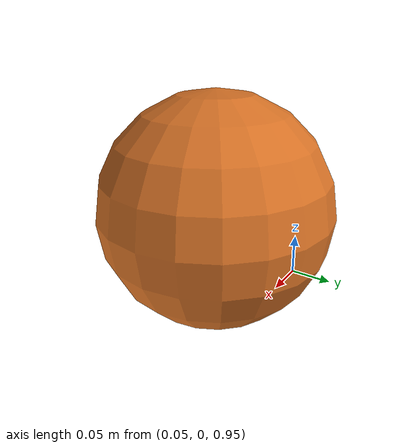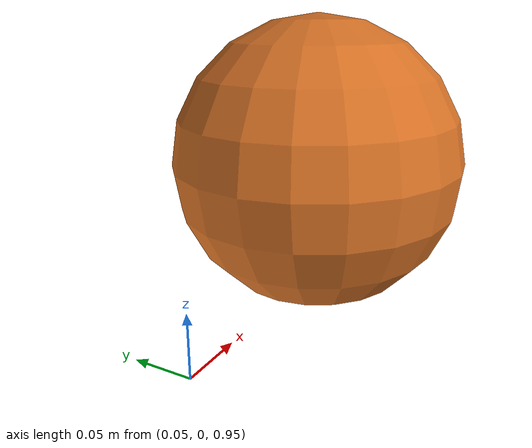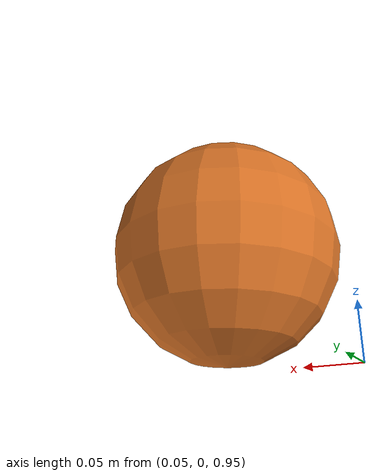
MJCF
<mujoco model="ball">
  <worldbody>
    <body name="ball" pos="0.19 -0.03 1.08">
      <freejoint name="ball_joint"/>
      <geom name="ball_geom"
            type="sphere"
            size="0.119"
            mass="0.3"
            rgba="0.85 0.45 0.15 1"
            condim="6"
            friction="3.5 0.8 0.05"
            solref="0.004 1.2"
            solimp="0.98 0.995 0.001 0.5 2"
            margin="0.002"/>
    </body>
  </worldbody>
</mujoco>
